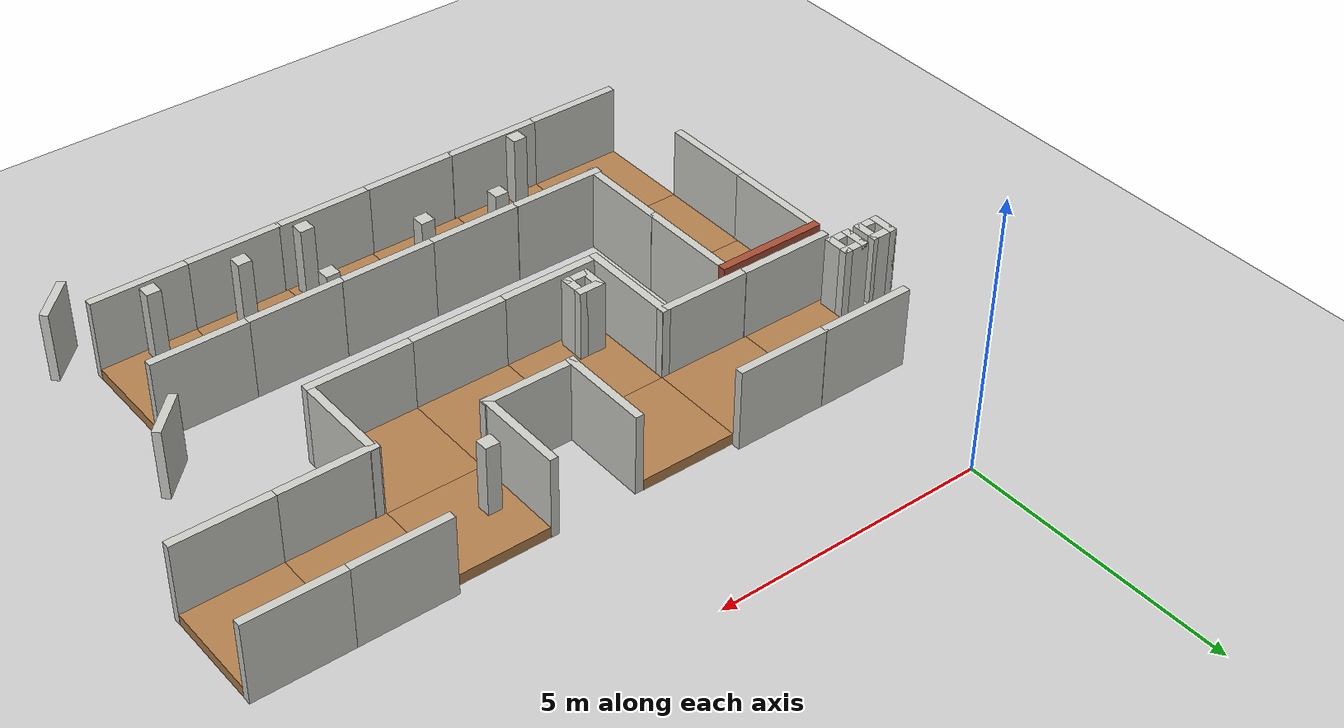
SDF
<sdf version="1.6">
 <world name="default">
  <model name="ground_plane">
   <static>1</static>
   <link name="link">
    <collision name="collision">
     <geometry><plane><normal>0 0 1</normal><size>100 100</size></plane></geometry>
     <surface><friction><ode><mu>100</mu><mu2>50</mu2></ode></friction></surface>
    </collision>
    <visual name="visual">
     <cast_shadows>0</cast_shadows>
     <geometry><plane><normal>0 0 1</normal><size>100 100</size></plane></geometry>
     <material>
      <script><uri>file://media/materials/scripts/gazebo.material</uri><name>Gazebo/Grey</name></script>
     </material>
    </visual>
   </link>
  </model>
  <model name="nerve_end_clone">
   <pose>0.033954 -5.68438 0 0 -0 2e-06</pose>
   <link name="Wall_0">
    <collision name="Wall_0_Collision">
     <geometry><box><size>1.76 1.75 0.2</size></box></geometry>
     <pose>0 0 0.1 0 -0 0</pose>
    </collision>
    <visual name="Wall_0_Visual">
     <pose>0 0 0.1 0 -0 0</pose>
     <geometry><box><size>1.76 1.75 0.2</size></box></geometry>
     <material>
      <script><uri>file://media/materials/scripts/gazebo.material</uri><name>Gazebo/Wood</name></script>
      <ambient>1 0.764706 0.305882 1</ambient>
     </material>
    </visual>
    <pose>-0.009 -0.064 0 0 -0 0</pose>
   </link>
   <link name="Wall_2">
    <collision name="Wall_2_Collision">
     <geometry><box><size>1.8 0.15 1.5</size></box></geometry>
     <pose>0 0 0.75 0 -0 0</pose>
    </collision>
    <visual name="Wall_2_Visual">
     <pose>0 0 0.75 0 -0 0</pose>
     <geometry><box><size>1.8 0.15 1.5</size></box></geometry>
     <material>
      <script><uri>file://media/materials/scripts/gazebo.material</uri><name>Gazebo/CeilingTiled</name></script>
      <ambient>1 0.764706 0.305882 1</ambient>
     </material>
    </visual>
    <pose>-0.95 -0.065 0 0 0 -1.5708</pose>
   </link>
   <link name="Wall_4">
    <collision name="Wall_4_Collision">
     <geometry><box><size>1.8 0.15 1.5</size></box></geometry>
     <pose>0 0 0.75 0 -0 0</pose>
    </collision>
    <visual name="Wall_4_Visual">
     <pose>0 0 0.75 0 -0 0</pose>
     <geometry><box><size>1.8 0.15 1.5</size></box></geometry>
     <material>
      <script><uri>file://media/materials/scripts/gazebo.material</uri><name>Gazebo/CeilingTiled</name></script>
      <ambient>1 0.764706 0.305882 1</ambient>
     </material>
    </visual>
    <pose>0.95 -0.065 0 0 0 -1.5708</pose>
   </link>
   <link name="Wall_6">
    <collision name="Wall_6_Collision">
     <geometry><box><size>2.05 0.15 1.5</size></box></geometry>
     <pose>0 0 0.75 0 -0 0</pose>
    </collision>
    <visual name="Wall_6_Visual">
     <pose>0 0 0.75 0 -0 0</pose>
     <geometry><box><size>2.05 0.15 1.5</size></box></geometry>
     <material>
      <script><uri>file://media/materials/scripts/gazebo.material</uri><name>Gazebo/Bricks</name></script>
      <ambient>0.996078 0.47451 0.0196078 1</ambient>
     </material>
    </visual>
    <pose>0 0.89 0 0 -0 0</pose>
   </link>
   <static>1</static>
  </model>
  <model name="nerve_straight_clone">
   <pose>-0.046085 -3.55478 0 0 0 -1.5708</pose>
   <link name="Wall_0">
    <collision name="Wall_0_Collision">
     <geometry><box><size>1.76 1.75 0.2</size></box></geometry>
     <pose>0 0 0.1 0 -0 0</pose>
    </collision>
    <visual name="Wall_0_Visual">
     <pose>0 0 0.1 0 -0 0</pose>
     <geometry><box><size>1.76 1.75 0.2</size></box></geometry>
     <material>
      <script><uri>file://media/materials/scripts/gazebo.material</uri><name>Gazebo/Wood</name></script>
      <ambient>1 0.764706 0.305882 1</ambient>
     </material>
    </visual>
    <pose>0.005 -0.002 0 0 -0 3.14159</pose>
   </link>
   <link name="Wall_2">
    <collision name="Wall_2_Collision">
     <geometry><box><size>1.75 0.15 1.5</size></box></geometry>
     <pose>0 0 0.75 0 -0 0</pose>
    </collision>
    <visual name="Wall_2_Visual">
     <pose>0 0 0.75 0 -0 0</pose>
     <geometry><box><size>1.75 0.15 1.5</size></box></geometry>
     <material>
      <script><uri>file://media/materials/scripts/gazebo.material</uri><name>Gazebo/CeilingTiled</name></script>
      <ambient>1 0.764706 0.305882 1</ambient>
     </material>
    </visual>
    <pose>-0.955 0.002 0 0 0 -1.5708</pose>
   </link>
   <link name="Wall_4">
    <collision name="Wall_4_Collision">
     <geometry><box><size>1.75 0.15 1.5</size></box></geometry>
     <pose>0 0 0.75 0 -0 0</pose>
    </collision>
    <visual name="Wall_4_Visual">
     <pose>0 0 0.75 0 -0 0</pose>
     <geometry><box><size>1.75 0.15 1.5</size></box></geometry>
     <material>
      <script><uri>file://media/materials/scripts/gazebo.material</uri><name>Gazebo/CeilingTiled</name></script>
      <ambient>1 0.764706 0.305882 1</ambient>
     </material>
    </visual>
    <pose>0.955 0.002 0 0 0 -1.5708</pose>
   </link>
   <static>1</static>
  </model>
  <model name="nerve_onewall_clone">
   <pose>0.01829 -9.25795 0 0 -0 1.5708</pose>
   <link name="Wall_0">
    <collision name="Wall_0_Collision">
     <geometry><box><size>1.76 1.75 0.2</size></box></geometry>
     <pose>0 0 0.1 0 -0 0</pose>
    </collision>
    <visual name="Wall_0_Visual">
     <pose>0 0 0.1 0 -0 0</pose>
     <geometry><box><size>1.76 1.75 0.2</size></box></geometry>
     <material>
      <script><uri>file://media/materials/scripts/gazebo.material</uri><name>Gazebo/Wood</name></script>
      <ambient>1 0.764706 0.305882 1</ambient>
     </material>
    </visual>
    <pose>0.0775 -0.002 0 0 -0 3.14159</pose>
   </link>
   <link name="Wall_2">
    <collision name="Wall_2_Collision">
     <geometry><box><size>1.75 0.15 1.5</size></box></geometry>
     <pose>0 0 0.75 0 -0 0</pose>
    </collision>
    <visual name="Wall_2_Visual">
     <pose>0 0 0.75 0 -0 0</pose>
     <geometry><box><size>1.75 0.15 1.5</size></box></geometry>
     <material>
      <script><uri>file://media/materials/scripts/gazebo.material</uri><name>Gazebo/CeilingTiled</name></script>
      <ambient>1 0.764706 0.305882 1</ambient>
     </material>
    </visual>
    <pose>-0.8825 0.002 0 0 0 -1.5708</pose>
   </link>
   <static>1</static>
  </model>
  <model name="nerve_straight_clone_0_clone_1">
   <pose>8.6208 -9.18716 0 0 0 -1.5708</pose>
   <link name="Wall_0">
    <collision name="Wall_0_Collision">
     <geometry><box><size>1.76 1.75 0.2</size></box></geometry>
     <pose>0 0 0.1 0 -0 0</pose>
    </collision>
    <visual name="Wall_0_Visual">
     <pose>0 0 0.1 0 -0 0</pose>
     <geometry><box><size>1.76 1.75 0.2</size></box></geometry>
     <material>
      <script><uri>file://media/materials/scripts/gazebo.material</uri><name>Gazebo/Wood</name></script>
      <ambient>1 0.764706 0.305882 1</ambient>
     </material>
    </visual>
    <pose>0.005 -0.002 0 0 -0 3.14159</pose>
   </link>
   <link name="Wall_2">
    <collision name="Wall_2_Collision">
     <geometry><box><size>1.75 0.15 1.5</size></box></geometry>
     <pose>0 0 0.75 0 -0 0</pose>
    </collision>
    <visual name="Wall_2_Visual">
     <pose>0 0 0.75 0 -0 0</pose>
     <geometry><box><size>1.75 0.15 1.5</size></box></geometry>
     <material>
      <script><uri>file://media/materials/scripts/gazebo.material</uri><name>Gazebo/CeilingTiled</name></script>
      <ambient>1 0.764706 0.305882 1</ambient>
     </material>
    </visual>
    <pose>-0.955 0.002 0 0 0 -1.5708</pose>
   </link>
   <link name="Wall_4">
    <collision name="Wall_4_Collision">
     <geometry><box><size>1.75 0.15 1.5</size></box></geometry>
     <pose>0 0 0.75 0 -0 0</pose>
    </collision>
    <visual name="Wall_4_Visual">
     <pose>0 0 0.75 0 -0 0</pose>
     <geometry><box><size>1.75 0.15 1.5</size></box></geometry>
     <material>
      <script><uri>file://media/materials/scripts/gazebo.material</uri><name>Gazebo/CeilingTiled</name></script>
      <ambient>1 0.764706 0.305882 1</ambient>
     </material>
    </visual>
    <pose>0.955 0.002 0 0 0 -1.5708</pose>
   </link>
   <static>1</static>
  </model>
  <model name="nerve_straight_clone_0_clone_0_clone_1">
   <pose>8.6286 -3.57606 0 0 0 -1.5708</pose>
   <link name="Wall_0">
    <collision name="Wall_0_Collision">
     <geometry><box><size>1.76 1.75 0.2</size></box></geometry>
     <pose>0 0 0.1 0 -0 0</pose>
    </collision>
    <visual name="Wall_0_Visual">
     <pose>0 0 0.1 0 -0 0</pose>
     <geometry><box><size>1.76 1.75 0.2</size></box></geometry>
     <material>
      <script><uri>file://media/materials/scripts/gazebo.material</uri><name>Gazebo/Wood</name></script>
      <ambient>1 0.764706 0.305882 1</ambient>
     </material>
    </visual>
    <pose>0.005 -0.002 0 0 -0 3.14159</pose>
   </link>
   <link name="Wall_2">
    <collision name="Wall_2_Collision">
     <geometry><box><size>1.75 0.15 1.5</size></box></geometry>
     <pose>0 0 0.75 0 -0 0</pose>
    </collision>
    <visual name="Wall_2_Visual">
     <pose>0 0 0.75 0 -0 0</pose>
     <geometry><box><size>1.75 0.15 1.5</size></box></geometry>
     <material>
      <script><uri>file://media/materials/scripts/gazebo.material</uri><name>Gazebo/CeilingTiled</name></script>
      <ambient>1 0.764706 0.305882 1</ambient>
     </material>
    </visual>
    <pose>-0.955 0.002 0 0 0 -1.5708</pose>
   </link>
   <link name="Wall_4">
    <collision name="Wall_4_Collision">
     <geometry><box><size>1.75 0.15 1.5</size></box></geometry>
     <pose>0 0 0.75 0 -0 0</pose>
    </collision>
    <visual name="Wall_4_Visual">
     <pose>0 0 0.75 0 -0 0</pose>
     <geometry><box><size>1.75 0.15 1.5</size></box></geometry>
     <material>
      <script><uri>file://media/materials/scripts/gazebo.material</uri><name>Gazebo/CeilingTiled</name></script>
      <ambient>1 0.764706 0.305882 1</ambient>
     </material>
    </visual>
    <pose>0.955 0.002 0 0 0 -1.5708</pose>
   </link>
   <static>1</static>
  </model>
  <model name="nerve_straight_clone_clone">
   <pose>1.65819 -3.56106 0 0 0 -1.5708</pose>
   <link name="Wall_0">
    <collision name="Wall_0_Collision">
     <geometry><box><size>1.76 1.75 0.2</size></box></geometry>
     <pose>0 0 0.1 0 -0 0</pose>
    </collision>
    <visual name="Wall_0_Visual">
     <pose>0 0 0.1 0 -0 0</pose>
     <geometry><box><size>1.76 1.75 0.2</size></box></geometry>
     <material>
      <script><uri>file://media/materials/scripts/gazebo.material</uri><name>Gazebo/Wood</name></script>
      <ambient>1 0.764706 0.305882 1</ambient>
     </material>
    </visual>
    <pose>0.005 -0.002 0 0 -0 3.14159</pose>
   </link>
   <link name="Wall_2">
    <collision name="Wall_2_Collision">
     <geometry><box><size>1.75 0.15 1.5</size></box></geometry>
     <pose>0 0 0.75 0 -0 0</pose>
    </collision>
    <visual name="Wall_2_Visual">
     <pose>0 0 0.75 0 -0 0</pose>
     <geometry><box><size>1.75 0.15 1.5</size></box></geometry>
     <material>
      <script><uri>file://media/materials/scripts/gazebo.material</uri><name>Gazebo/CeilingTiled</name></script>
      <ambient>1 0.764706 0.305882 1</ambient>
     </material>
    </visual>
    <pose>-0.955 0.002 0 0 0 -1.5708</pose>
   </link>
   <link name="Wall_4">
    <collision name="Wall_4_Collision">
     <geometry><box><size>1.75 0.15 1.5</size></box></geometry>
     <pose>0 0 0.75 0 -0 0</pose>
    </collision>
    <visual name="Wall_4_Visual">
     <pose>0 0 0.75 0 -0 0</pose>
     <geometry><box><size>1.75 0.15 1.5</size></box></geometry>
     <material>
      <script><uri>file://media/materials/scripts/gazebo.material</uri><name>Gazebo/CeilingTiled</name></script>
      <ambient>1 0.764706 0.305882 1</ambient>
     </material>
    </visual>
    <pose>0.955 0.002 0 0 0 -1.5708</pose>
   </link>
   <static>1</static>
  </model>
  <model name="nerve_onewall_clone_clone">
   <pose>3.48323 -3.56667 0 0 0 -3.14159</pose>
   <link name="Wall_0">
    <collision name="Wall_0_Collision">
     <geometry><box><size>1.76 1.75 0.2</size></box></geometry>
     <pose>0 0 0.1 0 -0 0</pose>
    </collision>
    <visual name="Wall_0_Visual">
     <pose>0 0 0.1 0 -0 0</pose>
     <geometry><box><size>1.76 1.75 0.2</size></box></geometry>
     <material>
      <script><uri>file://media/materials/scripts/gazebo.material</uri><name>Gazebo/Wood</name></script>
      <ambient>1 0.764706 0.305882 1</ambient>
     </material>
    </visual>
    <pose>0.0775 -0.002 0 0 -0 3.14159</pose>
   </link>
   <link name="Wall_2">
    <collision name="Wall_2_Collision">
     <geometry><box><size>1.75 0.15 1.5</size></box></geometry>
     <pose>0 0 0.75 0 -0 0</pose>
    </collision>
    <visual name="Wall_2_Visual">
     <pose>0 0 0.75 0 -0 0</pose>
     <geometry><box><size>1.75 0.15 1.5</size></box></geometry>
     <material>
      <script><uri>file://media/materials/scripts/gazebo.material</uri><name>Gazebo/CeilingTiled</name></script>
      <ambient>1 0.764706 0.305882 1</ambient>
     </material>
    </visual>
    <pose>-0.8825 0.002 0 0 0 -1.5708</pose>
   </link>
   <static>1</static>
  </model>
  <model name="nerve_corner_clone_clone_clone_clone_clone_1">
   <pose>3.33213 -5.39258 0 0 -0 1.5708</pose>
   <link name="Wall_0">
    <collision name="Wall_0_Collision">
     <geometry><box><size>1.76 1.75 0.2</size></box></geometry>
     <pose>0 0 0.1 0 -0 0</pose>
    </collision>
    <visual name="Wall_0_Visual">
     <pose>0 0 0.1 0 -0 0</pose>
     <geometry><box><size>1.76 1.75 0.2</size></box></geometry>
     <material>
      <script><uri>file://media/materials/scripts/gazebo.material</uri><name>Gazebo/Wood</name></script>
      <ambient>1 0.764706 0.305882 1</ambient>
     </material>
    </visual>
    <pose>0.077507 -0.077007 0 0 -0 3.14159</pose>
   </link>
   <link name="Wall_2">
    <collision name="Wall_2_Collision">
     <geometry><box><size>1.75 0.15 1.5</size></box></geometry>
     <pose>0 0 0.75 0 -0 0</pose>
    </collision>
    <visual name="Wall_2_Visual">
     <pose>0 0 0.75 0 -0 0</pose>
     <geometry><box><size>1.75 0.15 1.5</size></box></geometry>
     <material>
      <script><uri>file://media/materials/scripts/gazebo.material</uri><name>Gazebo/CeilingTiled</name></script>
      <ambient>1 0.764706 0.305882 1</ambient>
     </material>
    </visual>
    <pose>-0.882493 -0.073007 0 0 0 -1.5708</pose>
   </link>
   <link name="Wall_4">
    <collision name="Wall_4_Collision">
     <geometry><box><size>1.91042 0.15 1.5</size></box></geometry>
     <pose>0 0 0.75 0 -0 0</pose>
    </collision>
    <visual name="Wall_4_Visual">
     <pose>0 0 0.75 0 -0 0</pose>
     <geometry><box><size>1.91042 0.15 1.5</size></box></geometry>
     <material>
      <script><uri>file://media/materials/scripts/gazebo.material</uri><name>Gazebo/CeilingTiled</name></script>
      <ambient>1 0.764706 0.305882 1</ambient>
     </material>
    </visual>
    <pose>-0.002284 0.876825 0 0 -0 3.1414</pose>
   </link>
   <static>1</static>
  </model>
  <model name="nerve_corner_clone_clone_clone_clone_clone_2">
   <pose>6.97959 -5.38885 0 0 0 -3.14159</pose>
   <link name="Wall_0">
    <collision name="Wall_0_Collision">
     <geometry><box><size>1.76 1.75 0.2</size></box></geometry>
     <pose>0 0 0.1 0 -0 0</pose>
    </collision>
    <visual name="Wall_0_Visual">
     <pose>0 0 0.1 0 -0 0</pose>
     <geometry><box><size>1.76 1.75 0.2</size></box></geometry>
     <material>
      <script><uri>file://media/materials/scripts/gazebo.material</uri><name>Gazebo/Wood</name></script>
      <ambient>1 0.764706 0.305882 1</ambient>
     </material>
    </visual>
    <pose>0.077507 -0.077007 0 0 -0 3.14159</pose>
   </link>
   <link name="Wall_2">
    <collision name="Wall_2_Collision">
     <geometry><box><size>1.75 0.15 1.5</size></box></geometry>
     <pose>0 0 0.75 0 -0 0</pose>
    </collision>
    <visual name="Wall_2_Visual">
     <pose>0 0 0.75 0 -0 0</pose>
     <geometry><box><size>1.75 0.15 1.5</size></box></geometry>
     <material>
      <script><uri>file://media/materials/scripts/gazebo.material</uri><name>Gazebo/CeilingTiled</name></script>
      <ambient>1 0.764706 0.305882 1</ambient>
     </material>
    </visual>
    <pose>-0.882493 -0.073007 0 0 0 -1.5708</pose>
   </link>
   <link name="Wall_4">
    <collision name="Wall_4_Collision">
     <geometry><box><size>1.91042 0.15 1.5</size></box></geometry>
     <pose>0 0 0.75 0 -0 0</pose>
    </collision>
    <visual name="Wall_4_Visual">
     <pose>0 0 0.75 0 -0 0</pose>
     <geometry><box><size>1.91042 0.15 1.5</size></box></geometry>
     <material>
      <script><uri>file://media/materials/scripts/gazebo.material</uri><name>Gazebo/CeilingTiled</name></script>
      <ambient>1 0.764706 0.305882 1</ambient>
     </material>
    </visual>
    <pose>-0.002284 0.876825 0 0 -0 3.1414</pose>
   </link>
   <static>1</static>
  </model>
  <model name="nerve_onewall_clone_clone_clone">
   <pose>6.8175 -3.57567 0 0 -0 3e-06</pose>
   <link name="Wall_0">
    <collision name="Wall_0_Collision">
     <geometry><box><size>1.76 1.75 0.2</size></box></geometry>
     <pose>0 0 0.1 0 -0 0</pose>
    </collision>
    <visual name="Wall_0_Visual">
     <pose>0 0 0.1 0 -0 0</pose>
     <geometry><box><size>1.76 1.75 0.2</size></box></geometry>
     <material>
      <script><uri>file://media/materials/scripts/gazebo.material</uri><name>Gazebo/Wood</name></script>
      <ambient>1 0.764706 0.305882 1</ambient>
     </material>
    </visual>
    <pose>0.0775 -0.002 0 0 -0 3.14159</pose>
   </link>
   <link name="Wall_2">
    <collision name="Wall_2_Collision">
     <geometry><box><size>1.75 0.15 1.5</size></box></geometry>
     <pose>0 0 0.75 0 -0 0</pose>
    </collision>
    <visual name="Wall_2_Visual">
     <pose>0 0 0.75 0 -0 0</pose>
     <geometry><box><size>1.75 0.15 1.5</size></box></geometry>
     <material>
      <script><uri>file://media/materials/scripts/gazebo.material</uri><name>Gazebo/CeilingTiled</name></script>
      <ambient>1 0.764706 0.305882 1</ambient>
     </material>
    </visual>
    <pose>-0.8825 0.002 0 0 0 -1.5708</pose>
   </link>
   <static>1</static>
  </model>
  <model name="nerve_straight_clone_0_clone_0_clone_1_clone">
   <pose>5.15395 -5.3136 0 0 0 -1.5708</pose>
   <link name="Wall_0">
    <collision name="Wall_0_Collision">
     <geometry><box><size>1.76 1.75 0.2</size></box></geometry>
     <pose>0 0 0.1 0 -0 0</pose>
    </collision>
    <visual name="Wall_0_Visual">
     <pose>0 0 0.1 0 -0 0</pose>
     <geometry><box><size>1.76 1.75 0.2</size></box></geometry>
     <material>
      <script><uri>file://media/materials/scripts/gazebo.material</uri><name>Gazebo/Wood</name></script>
      <ambient>1 0.764706 0.305882 1</ambient>
     </material>
    </visual>
    <pose>0.005 -0.002 0 0 -0 3.14159</pose>
   </link>
   <link name="Wall_2">
    <collision name="Wall_2_Collision">
     <geometry><box><size>1.75 0.15 1.5</size></box></geometry>
     <pose>0 0 0.75 0 -0 0</pose>
    </collision>
    <visual name="Wall_2_Visual">
     <pose>0 0 0.75 0 -0 0</pose>
     <geometry><box><size>1.75 0.15 1.5</size></box></geometry>
     <material>
      <script><uri>file://media/materials/scripts/gazebo.material</uri><name>Gazebo/CeilingTiled</name></script>
      <ambient>1 0.764706 0.305882 1</ambient>
     </material>
    </visual>
    <pose>-0.955 0.002 0 0 0 -1.5708</pose>
   </link>
   <link name="Wall_4">
    <collision name="Wall_4_Collision">
     <geometry><box><size>1.75 0.15 1.5</size></box></geometry>
     <pose>0 0 0.75 0 -0 0</pose>
    </collision>
    <visual name="Wall_4_Visual">
     <pose>0 0 0.75 0 -0 0</pose>
     <geometry><box><size>1.75 0.15 1.5</size></box></geometry>
     <material>
      <script><uri>file://media/materials/scripts/gazebo.material</uri><name>Gazebo/CeilingTiled</name></script>
      <ambient>1 0.764706 0.305882 1</ambient>
     </material>
    </visual>
    <pose>0.955 0.002 0 0 0 -1.5708</pose>
   </link>
   <static>1</static>
  </model>
  <model name="nerve_straight_clone_0_clone_1_clone_0_clone_0">
   <pose>10.3746 -3.57558 0 0 0 -1.5708</pose>
   <link name="Wall_0">
    <collision name="Wall_0_Collision">
     <geometry><box><size>1.76 1.75 0.2</size></box></geometry>
     <pose>0 0 0.1 0 -0 0</pose>
    </collision>
    <visual name="Wall_0_Visual">
     <pose>0 0 0.1 0 -0 0</pose>
     <geometry><box><size>1.76 1.75 0.2</size></box></geometry>
     <material>
      <script><uri>file://media/materials/scripts/gazebo.material</uri><name>Gazebo/Wood</name></script>
      <ambient>1 0.764706 0.305882 1</ambient>
     </material>
    </visual>
    <pose>0.005 -0.002 0 0 -0 3.14159</pose>
   </link>
   <link name="Wall_2">
    <collision name="Wall_2_Collision">
     <geometry><box><size>1.75 0.15 1.5</size></box></geometry>
     <pose>0 0 0.75 0 -0 0</pose>
    </collision>
    <visual name="Wall_2_Visual">
     <pose>0 0 0.75 0 -0 0</pose>
     <geometry><box><size>1.75 0.15 1.5</size></box></geometry>
     <material>
      <script><uri>file://media/materials/scripts/gazebo.material</uri><name>Gazebo/CeilingTiled</name></script>
      <ambient>1 0.764706 0.305882 1</ambient>
     </material>
    </visual>
    <pose>-0.955 0.002 0 0 0 -1.5708</pose>
   </link>
   <link name="Wall_4">
    <collision name="Wall_4_Collision">
     <geometry><box><size>1.75 0.15 1.5</size></box></geometry>
     <pose>0 0 0.75 0 -0 0</pose>
    </collision>
    <visual name="Wall_4_Visual">
     <pose>0 0 0.75 0 -0 0</pose>
     <geometry><box><size>1.75 0.15 1.5</size></box></geometry>
     <material>
      <script><uri>file://media/materials/scripts/gazebo.material</uri><name>Gazebo/CeilingTiled</name></script>
      <ambient>1 0.764706 0.305882 1</ambient>
     </material>
    </visual>
    <pose>0.955 0.002 0 0 0 -1.5708</pose>
   </link>
   <static>1</static>
  </model>
  <model name="nerve_straight_clone_0_clone_1_clone_0_clone_1">
   <pose>6.88265 -9.18852 0 0 0 -1.5708</pose>
   <link name="Wall_0">
    <collision name="Wall_0_Collision">
     <geometry><box><size>1.76 1.75 0.2</size></box></geometry>
     <pose>0 0 0.1 0 -0 0</pose>
    </collision>
    <visual name="Wall_0_Visual">
     <pose>0 0 0.1 0 -0 0</pose>
     <geometry><box><size>1.76 1.75 0.2</size></box></geometry>
     <material>
      <script><uri>file://media/materials/scripts/gazebo.material</uri><name>Gazebo/Wood</name></script>
      <ambient>1 0.764706 0.305882 1</ambient>
     </material>
    </visual>
    <pose>0.005 -0.002 0 0 -0 3.14159</pose>
   </link>
   <link name="Wall_2">
    <collision name="Wall_2_Collision">
     <geometry><box><size>1.75 0.15 1.5</size></box></geometry>
     <pose>0 0 0.75 0 -0 0</pose>
    </collision>
    <visual name="Wall_2_Visual">
     <pose>0 0 0.75 0 -0 0</pose>
     <geometry><box><size>1.75 0.15 1.5</size></box></geometry>
     <material>
      <script><uri>file://media/materials/scripts/gazebo.material</uri><name>Gazebo/CeilingTiled</name></script>
      <ambient>1 0.764706 0.305882 1</ambient>
     </material>
    </visual>
    <pose>-0.955 0.002 0 0 0 -1.5708</pose>
   </link>
   <link name="Wall_4">
    <collision name="Wall_4_Collision">
     <geometry><box><size>1.75 0.15 1.5</size></box></geometry>
     <pose>0 0 0.75 0 -0 0</pose>
    </collision>
    <visual name="Wall_4_Visual">
     <pose>0 0 0.75 0 -0 0</pose>
     <geometry><box><size>1.75 0.15 1.5</size></box></geometry>
     <material>
      <script><uri>file://media/materials/scripts/gazebo.material</uri><name>Gazebo/CeilingTiled</name></script>
      <ambient>1 0.764706 0.305882 1</ambient>
     </material>
    </visual>
    <pose>0.955 0.002 0 0 0 -1.5708</pose>
   </link>
   <static>1</static>
  </model>
  <model name="nerve_straight_clone_0_clone_1_clone_0_clone_2">
   <pose>5.17661 -9.18701 0 0 0 -1.5708</pose>
   <link name="Wall_0">
    <collision name="Wall_0_Collision">
     <geometry><box><size>1.76 1.75 0.2</size></box></geometry>
     <pose>0 0 0.1 0 -0 0</pose>
    </collision>
    <visual name="Wall_0_Visual">
     <pose>0 0 0.1 0 -0 0</pose>
     <geometry><box><size>1.76 1.75 0.2</size></box></geometry>
     <material>
      <script><uri>file://media/materials/scripts/gazebo.material</uri><name>Gazebo/Wood</name></script>
      <ambient>1 0.764706 0.305882 1</ambient>
     </material>
    </visual>
    <pose>0.005 -0.002 0 0 -0 3.14159</pose>
   </link>
   <link name="Wall_2">
    <collision name="Wall_2_Collision">
     <geometry><box><size>1.75 0.15 1.5</size></box></geometry>
     <pose>0 0 0.75 0 -0 0</pose>
    </collision>
    <visual name="Wall_2_Visual">
     <pose>0 0 0.75 0 -0 0</pose>
     <geometry><box><size>1.75 0.15 1.5</size></box></geometry>
     <material>
      <script><uri>file://media/materials/scripts/gazebo.material</uri><name>Gazebo/CeilingTiled</name></script>
      <ambient>1 0.764706 0.305882 1</ambient>
     </material>
    </visual>
    <pose>-0.955 0.002 0 0 0 -1.5708</pose>
   </link>
   <link name="Wall_4">
    <collision name="Wall_4_Collision">
     <geometry><box><size>1.75 0.15 1.5</size></box></geometry>
     <pose>0 0 0.75 0 -0 0</pose>
    </collision>
    <visual name="Wall_4_Visual">
     <pose>0 0 0.75 0 -0 0</pose>
     <geometry><box><size>1.75 0.15 1.5</size></box></geometry>
     <material>
      <script><uri>file://media/materials/scripts/gazebo.material</uri><name>Gazebo/CeilingTiled</name></script>
      <ambient>1 0.764706 0.305882 1</ambient>
     </material>
    </visual>
    <pose>0.955 0.002 0 0 0 -1.5708</pose>
   </link>
   <static>1</static>
  </model>
  <model name="nerve_straight_clone_0_clone_1_clone_0_clone_3">
   <pose>3.45605 -9.18839 0 0 0 -1.5708</pose>
   <link name="Wall_0">
    <collision name="Wall_0_Collision">
     <geometry><box><size>1.76 1.75 0.2</size></box></geometry>
     <pose>0 0 0.1 0 -0 0</pose>
    </collision>
    <visual name="Wall_0_Visual">
     <pose>0 0 0.1 0 -0 0</pose>
     <geometry><box><size>1.76 1.75 0.2</size></box></geometry>
     <material>
      <script><uri>file://media/materials/scripts/gazebo.material</uri><name>Gazebo/Wood</name></script>
      <ambient>1 0.764706 0.305882 1</ambient>
     </material>
    </visual>
    <pose>0.005 -0.002 0 0 -0 3.14159</pose>
   </link>
   <link name="Wall_2">
    <collision name="Wall_2_Collision">
     <geometry><box><size>1.75 0.15 1.5</size></box></geometry>
     <pose>0 0 0.75 0 -0 0</pose>
    </collision>
    <visual name="Wall_2_Visual">
     <pose>0 0 0.75 0 -0 0</pose>
     <geometry><box><size>1.75 0.15 1.5</size></box></geometry>
     <material>
      <script><uri>file://media/materials/scripts/gazebo.material</uri><name>Gazebo/CeilingTiled</name></script>
      <ambient>1 0.764706 0.305882 1</ambient>
     </material>
    </visual>
    <pose>-0.955 0.002 0 0 0 -1.5708</pose>
   </link>
   <link name="Wall_4">
    <collision name="Wall_4_Collision">
     <geometry><box><size>1.75 0.15 1.5</size></box></geometry>
     <pose>0 0 0.75 0 -0 0</pose>
    </collision>
    <visual name="Wall_4_Visual">
     <pose>0 0 0.75 0 -0 0</pose>
     <geometry><box><size>1.75 0.15 1.5</size></box></geometry>
     <material>
      <script><uri>file://media/materials/scripts/gazebo.material</uri><name>Gazebo/CeilingTiled</name></script>
      <ambient>1 0.764706 0.305882 1</ambient>
     </material>
    </visual>
    <pose>0.955 0.002 0 0 0 -1.5708</pose>
   </link>
   <static>1</static>
  </model>
  <model name="nerve_straight_clone_0_clone_1_clone_0_clone_4">
   <pose>1.75603 -9.18083 0 0 0 -1.5708</pose>
   <link name="Wall_0">
    <collision name="Wall_0_Collision">
     <geometry><box><size>1.76 1.75 0.2</size></box></geometry>
     <pose>0 0 0.1 0 -0 0</pose>
    </collision>
    <visual name="Wall_0_Visual">
     <pose>0 0 0.1 0 -0 0</pose>
     <geometry><box><size>1.76 1.75 0.2</size></box></geometry>
     <material>
      <script><uri>file://media/materials/scripts/gazebo.material</uri><name>Gazebo/Wood</name></script>
      <ambient>1 0.764706 0.305882 1</ambient>
     </material>
    </visual>
    <pose>0.005 -0.002 0 0 -0 3.14159</pose>
   </link>
   <link name="Wall_2">
    <collision name="Wall_2_Collision">
     <geometry><box><size>1.75 0.15 1.5</size></box></geometry>
     <pose>0 0 0.75 0 -0 0</pose>
    </collision>
    <visual name="Wall_2_Visual">
     <pose>0 0 0.75 0 -0 0</pose>
     <geometry><box><size>1.75 0.15 1.5</size></box></geometry>
     <material>
      <script><uri>file://media/materials/scripts/gazebo.material</uri><name>Gazebo/CeilingTiled</name></script>
      <ambient>1 0.764706 0.305882 1</ambient>
     </material>
    </visual>
    <pose>-0.955 0.002 0 0 0 -1.5708</pose>
   </link>
   <link name="Wall_4">
    <collision name="Wall_4_Collision">
     <geometry><box><size>1.75 0.15 1.5</size></box></geometry>
     <pose>0 0 0.75 0 -0 0</pose>
    </collision>
    <visual name="Wall_4_Visual">
     <pose>0 0 0.75 0 -0 0</pose>
     <geometry><box><size>1.75 0.15 1.5</size></box></geometry>
     <material>
      <script><uri>file://media/materials/scripts/gazebo.material</uri><name>Gazebo/CeilingTiled</name></script>
      <ambient>1 0.764706 0.305882 1</ambient>
     </material>
    </visual>
    <pose>0.955 0.002 0 0 0 -1.5708</pose>
   </link>
   <static>1</static>
  </model>
  <model name="nerve_straight_clone_0_clone_clone_clone">
   <pose>0.033036 -7.44606 0 0 -0 3.14159</pose>
   <link name="Wall_0">
    <collision name="Wall_0_Collision">
     <geometry><box><size>1.76 1.75 0.2</size></box></geometry>
     <pose>0 0 0.1 0 -0 0</pose>
    </collision>
    <visual name="Wall_0_Visual">
     <pose>0 0 0.1 0 -0 0</pose>
     <geometry><box><size>1.76 1.75 0.2</size></box></geometry>
     <material>
      <script><uri>file://media/materials/scripts/gazebo.material</uri><name>Gazebo/Wood</name></script>
      <ambient>1 0.764706 0.305882 1</ambient>
     </material>
    </visual>
    <pose>0.005 -0.002 0 0 -0 3.14159</pose>
   </link>
   <link name="Wall_2">
    <collision name="Wall_2_Collision">
     <geometry><box><size>1.75 0.15 1.5</size></box></geometry>
     <pose>0 0 0.75 0 -0 0</pose>
    </collision>
    <visual name="Wall_2_Visual">
     <pose>0 0 0.75 0 -0 0</pose>
     <geometry><box><size>1.75 0.15 1.5</size></box></geometry>
     <material>
      <script><uri>file://media/materials/scripts/gazebo.material</uri><name>Gazebo/CeilingTiled</name></script>
      <ambient>1 0.764706 0.305882 1</ambient>
     </material>
    </visual>
    <pose>-0.955 0.002 0 0 0 -1.5708</pose>
   </link>
   <link name="Wall_4">
    <collision name="Wall_4_Collision">
     <geometry><box><size>1.75 0.15 1.5</size></box></geometry>
     <pose>0 0 0.75 0 -0 0</pose>
    </collision>
    <visual name="Wall_4_Visual">
     <pose>0 0 0.75 0 -0 0</pose>
     <geometry><box><size>1.75 0.15 1.5</size></box></geometry>
     <material>
      <script><uri>file://media/materials/scripts/gazebo.material</uri><name>Gazebo/CeilingTiled</name></script>
      <ambient>1 0.764706 0.305882 1</ambient>
     </material>
    </visual>
    <pose>0.955 0.002 0 0 0 -1.5708</pose>
   </link>
   <static>1</static>
  </model>
  <model name="nerve_obs_squarepillar_large_clone_39">
   <pose>3.02023 -5.84578 0.2 0 -0 0</pose>
   <link name="Wall_31">
    <collision name="Wall_31_Collision">
     <geometry><box><size>0.5 0.15 1.3</size></box></geometry>
     <pose>0 0 0.65 0 -0 0</pose>
    </collision>
    <visual name="Wall_31_Visual">
     <pose>0 0 0.65 0 -0 0</pose>
     <geometry><box><size>0.5 0.15 1.3</size></box></geometry>
     <material>
      <script><uri>file://media/materials/scripts/gazebo.material</uri><name>Gazebo/CeilingTiled</name></script>
      <ambient>1 0.764706 0.305882 1</ambient>
     </material>
    </visual>
    <pose>-0.175 0 0 0 0 -1.5708</pose>
   </link>
   <link name="Wall_32">
    <collision name="Wall_32_Collision">
     <geometry><box><size>0.5 0.15 1.3</size></box></geometry>
     <pose>0 0 0.65 0 -0 0</pose>
    </collision>
    <visual name="Wall_32_Visual">
     <pose>0 0 0.65 0 -0 0</pose>
     <geometry><box><size>0.5 0.15 1.3</size></box></geometry>
     <material>
      <script><uri>file://media/materials/scripts/gazebo.material</uri><name>Gazebo/CeilingTiled</name></script>
      <ambient>1 0.764706 0.305882 1</ambient>
     </material>
    </visual>
    <pose>0 -0.175 0 0 -0 0</pose>
   </link>
   <link name="Wall_33">
    <collision name="Wall_33_Collision">
     <geometry><box><size>0.5 0.15 1.3</size></box></geometry>
     <pose>0 0 0.65 0 -0 0</pose>
    </collision>
    <visual name="Wall_33_Visual">
     <pose>0 0 0.65 0 -0 0</pose>
     <geometry><box><size>0.5 0.15 1.3</size></box></geometry>
     <material>
      <script><uri>file://media/materials/scripts/gazebo.material</uri><name>Gazebo/CeilingTiled</name></script>
      <ambient>1 0.764706 0.305882 1</ambient>
     </material>
    </visual>
    <pose>0.175 0 0 0 -0 1.5708</pose>
   </link>
   <link name="Wall_34">
    <collision name="Wall_34_Collision">
     <geometry><box><size>0.5 0.15 1.3</size></box></geometry>
     <pose>0 0 0.65 0 -0 0</pose>
    </collision>
    <visual name="Wall_34_Visual">
     <pose>0 0 0.65 0 -0 0</pose>
     <geometry><box><size>0.5 0.15 1.3</size></box></geometry>
     <material>
      <script><uri>file://media/materials/scripts/gazebo.material</uri><name>Gazebo/CeilingTiled</name></script>
      <ambient>1 0.764706 0.305882 1</ambient>
     </material>
    </visual>
    <pose>0 0.175 0 0 -0 3.14159</pose>
   </link>
   <static>1</static>
  </model>
  <model name="nerve_obs_squarepillar_large_clone_44">
   <pose>-1.64467 -4.10998 0.2 0 -0 0</pose>
   <link name="Wall_31">
    <collision name="Wall_31_Collision">
     <geometry><box><size>0.5 0.15 1.3</size></box></geometry>
     <pose>0 0 0.65 0 -0 0</pose>
    </collision>
    <visual name="Wall_31_Visual">
     <pose>0 0 0.65 0 -0 0</pose>
     <geometry><box><size>0.5 0.15 1.3</size></box></geometry>
     <material>
      <script><uri>file://media/materials/scripts/gazebo.material</uri><name>Gazebo/CeilingTiled</name></script>
      <ambient>1 0.764706 0.305882 1</ambient>
     </material>
    </visual>
    <pose>-0.175 0 0 0 0 -1.5708</pose>
   </link>
   <link name="Wall_32">
    <collision name="Wall_32_Collision">
     <geometry><box><size>0.5 0.15 1.3</size></box></geometry>
     <pose>0 0 0.65 0 -0 0</pose>
    </collision>
    <visual name="Wall_32_Visual">
     <pose>0 0 0.65 0 -0 0</pose>
     <geometry><box><size>0.5 0.15 1.3</size></box></geometry>
     <material>
      <script><uri>file://media/materials/scripts/gazebo.material</uri><name>Gazebo/CeilingTiled</name></script>
      <ambient>1 0.764706 0.305882 1</ambient>
     </material>
    </visual>
    <pose>0 -0.175 0 0 -0 0</pose>
   </link>
   <link name="Wall_33">
    <collision name="Wall_33_Collision">
     <geometry><box><size>0.5 0.15 1.3</size></box></geometry>
     <pose>0 0 0.65 0 -0 0</pose>
    </collision>
    <visual name="Wall_33_Visual">
     <pose>0 0 0.65 0 -0 0</pose>
     <geometry><box><size>0.5 0.15 1.3</size></box></geometry>
     <material>
      <script><uri>file://media/materials/scripts/gazebo.material</uri><name>Gazebo/CeilingTiled</name></script>
      <ambient>1 0.764706 0.305882 1</ambient>
     </material>
    </visual>
    <pose>0.175 0 0 0 -0 1.5708</pose>
   </link>
   <link name="Wall_34">
    <collision name="Wall_34_Collision">
     <geometry><box><size>0.5 0.15 1.3</size></box></geometry>
     <pose>0 0 0.65 0 -0 0</pose>
    </collision>
    <visual name="Wall_34_Visual">
     <pose>0 0 0.65 0 -0 0</pose>
     <geometry><box><size>0.5 0.15 1.3</size></box></geometry>
     <material>
      <script><uri>file://media/materials/scripts/gazebo.material</uri><name>Gazebo/CeilingTiled</name></script>
      <ambient>1 0.764706 0.305882 1</ambient>
     </material>
    </visual>
    <pose>0 0.175 0 0 -0 3.14159</pose>
   </link>
   <static>1</static>
  </model>
  <model name="nerve_obs_squarepillar_large_clone_45">
   <pose>-1.02799 -4.11097 0.2 0 -0 0</pose>
   <link name="Wall_31">
    <collision name="Wall_31_Collision">
     <geometry><box><size>0.5 0.15 1.3</size></box></geometry>
     <pose>0 0 0.65 0 -0 0</pose>
    </collision>
    <visual name="Wall_31_Visual">
     <pose>0 0 0.65 0 -0 0</pose>
     <geometry><box><size>0.5 0.15 1.3</size></box></geometry>
     <material>
      <script><uri>file://media/materials/scripts/gazebo.material</uri><name>Gazebo/CeilingTiled</name></script>
      <ambient>1 0.764706 0.305882 1</ambient>
     </material>
    </visual>
    <pose>-0.175 0 0 0 0 -1.5708</pose>
   </link>
   <link name="Wall_32">
    <collision name="Wall_32_Collision">
     <geometry><box><size>0.5 0.15 1.3</size></box></geometry>
     <pose>0 0 0.65 0 -0 0</pose>
    </collision>
    <visual name="Wall_32_Visual">
     <pose>0 0 0.65 0 -0 0</pose>
     <geometry><box><size>0.5 0.15 1.3</size></box></geometry>
     <material>
      <script><uri>file://media/materials/scripts/gazebo.material</uri><name>Gazebo/CeilingTiled</name></script>
      <ambient>1 0.764706 0.305882 1</ambient>
     </material>
    </visual>
    <pose>0 -0.175 0 0 -0 0</pose>
   </link>
   <link name="Wall_33">
    <collision name="Wall_33_Collision">
     <geometry><box><size>0.5 0.15 1.3</size></box></geometry>
     <pose>0 0 0.65 0 -0 0</pose>
    </collision>
    <visual name="Wall_33_Visual">
     <pose>0 0 0.65 0 -0 0</pose>
     <geometry><box><size>0.5 0.15 1.3</size></box></geometry>
     <material>
      <script><uri>file://media/materials/scripts/gazebo.material</uri><name>Gazebo/CeilingTiled</name></script>
      <ambient>1 0.764706 0.305882 1</ambient>
     </material>
    </visual>
    <pose>0.175 0 0 0 -0 1.5708</pose>
   </link>
   <link name="Wall_34">
    <collision name="Wall_34_Collision">
     <geometry><box><size>0.5 0.15 1.3</size></box></geometry>
     <pose>0 0 0.65 0 -0 0</pose>
    </collision>
    <visual name="Wall_34_Visual">
     <pose>0 0 0.65 0 -0 0</pose>
     <geometry><box><size>0.5 0.15 1.3</size></box></geometry>
     <material>
      <script><uri>file://media/materials/scripts/gazebo.material</uri><name>Gazebo/CeilingTiled</name></script>
      <ambient>1 0.764706 0.305882 1</ambient>
     </material>
    </visual>
    <pose>0 0.175 0 0 -0 3.14159</pose>
   </link>
   <static>1</static>
  </model>
  <model name="nerve_obs_squarepillar_small_clone_5">
   <pose>1.40418 -9.89973 0.2 0 -0 0</pose>
   <link name="Wall_40">
    <collision name="Wall_40_Collision">
     <geometry><box><size>0.26 0.25 1.3</size></box></geometry>
     <pose>0 0 0.65 0 -0 0</pose>
    </collision>
    <visual name="Wall_40_Visual">
     <pose>0 0 0.65 0 -0 0</pose>
     <geometry><box><size>0.26 0.25 1.3</size></box></geometry>
     <material>
      <script><uri>file://media/materials/scripts/gazebo.material</uri><name>Gazebo/CeilingTiled</name></script>
      <ambient>1 0.764706 0.305882 1</ambient>
     </material>
    </visual>
   </link>
   <static>1</static>
  </model>
  <model name="nerve_obs_squarepillar_small_clone_6">
   <pose>2.62637 -8.72779 0.2 0 -0 0</pose>
   <link name="Wall_40">
    <collision name="Wall_40_Collision">
     <geometry><box><size>0.26 0.25 1.3</size></box></geometry>
     <pose>0 0 0.65 0 -0 0</pose>
    </collision>
    <visual name="Wall_40_Visual">
     <pose>0 0 0.65 0 -0 0</pose>
     <geometry><box><size>0.26 0.25 1.3</size></box></geometry>
     <material>
      <script><uri>file://media/materials/scripts/gazebo.material</uri><name>Gazebo/CeilingTiled</name></script>
      <ambient>1 0.764706 0.305882 1</ambient>
     </material>
    </visual>
   </link>
   <static>1</static>
  </model>
  <model name="nerve_obs_squarepillar_small_clone_7">
   <pose>4.04489 -8.82976 0.2 0 -0 0</pose>
   <link name="Wall_40">
    <collision name="Wall_40_Collision">
     <geometry><box><size>0.26 0.25 1.3</size></box></geometry>
     <pose>0 0 0.65 0 -0 0</pose>
    </collision>
    <visual name="Wall_40_Visual">
     <pose>0 0 0.65 0 -0 0</pose>
     <geometry><box><size>0.26 0.25 1.3</size></box></geometry>
     <material>
      <script><uri>file://media/materials/scripts/gazebo.material</uri><name>Gazebo/CeilingTiled</name></script>
      <ambient>1 0.764706 0.305882 1</ambient>
     </material>
    </visual>
   </link>
   <static>1</static>
  </model>
  <model name="nerve_obs_squarepillar_small_clone_8">
   <pose>5.73175 -9.84689 0.2 0 -0 0</pose>
   <link name="Wall_40">
    <collision name="Wall_40_Collision">
     <geometry><box><size>0.26 0.25 1.3</size></box></geometry>
     <pose>0 0 0.65 0 -0 0</pose>
    </collision>
    <visual name="Wall_40_Visual">
     <pose>0 0 0.65 0 -0 0</pose>
     <geometry><box><size>0.26 0.25 1.3</size></box></geometry>
     <material>
      <script><uri>file://media/materials/scripts/gazebo.material</uri><name>Gazebo/CeilingTiled</name></script>
      <ambient>1 0.764706 0.305882 1</ambient>
     </material>
    </visual>
   </link>
   <static>1</static>
  </model>
  <model name="nerve_obs_squarepillar_small_clone_9">
   <pose>7.01 -9.66979 0.2 0 -0 0</pose>
   <link name="Wall_40">
    <collision name="Wall_40_Collision">
     <geometry><box><size>0.26 0.25 1.3</size></box></geometry>
     <pose>0 0 0.65 0 -0 0</pose>
    </collision>
    <visual name="Wall_40_Visual">
     <pose>0 0 0.65 0 -0 0</pose>
     <geometry><box><size>0.26 0.25 1.3</size></box></geometry>
     <material>
      <script><uri>file://media/materials/scripts/gazebo.material</uri><name>Gazebo/CeilingTiled</name></script>
      <ambient>1 0.764706 0.305882 1</ambient>
     </material>
    </visual>
   </link>
   <static>1</static>
  </model>
  <model name="nerve_obs_squarepillar_small_clone_10">
   <pose>6.06154 -8.53884 0.2 0 -0 0</pose>
   <link name="Wall_40">
    <collision name="Wall_40_Collision">
     <geometry><box><size>0.26 0.25 1.3</size></box></geometry>
     <pose>0 0 0.65 0 -0 0</pose>
    </collision>
    <visual name="Wall_40_Visual">
     <pose>0 0 0.65 0 -0 0</pose>
     <geometry><box><size>0.26 0.25 1.3</size></box></geometry>
     <material>
      <script><uri>file://media/materials/scripts/gazebo.material</uri><name>Gazebo/CeilingTiled</name></script>
      <ambient>1 0.764706 0.305882 1</ambient>
     </material>
    </visual>
   </link>
   <static>1</static>
  </model>
  <model name="nerve_obs_squarepillar_small_clone_11">
   <pose>8.55102 -9.85727 0.2 0 -0 0</pose>
   <link name="Wall_40">
    <collision name="Wall_40_Collision">
     <geometry><box><size>0.26 0.25 1.3</size></box></geometry>
     <pose>0 0 0.65 0 -0 0</pose>
    </collision>
    <visual name="Wall_40_Visual">
     <pose>0 0 0.65 0 -0 0</pose>
     <geometry><box><size>0.26 0.25 1.3</size></box></geometry>
     <material>
      <script><uri>file://media/materials/scripts/gazebo.material</uri><name>Gazebo/CeilingTiled</name></script>
      <ambient>1 0.764706 0.305882 1</ambient>
     </material>
    </visual>
   </link>
   <static>1</static>
  </model>
  <model name="nerve_obs_squarepillar_small_clone_39">
   <pose>6.46654 -3.59405 0.2 0 -0 0</pose>
   <link name="Wall_40">
    <collision name="Wall_40_Collision">
     <geometry><box><size>0.26 0.25 1.3</size></box></geometry>
     <pose>0 0 0.65 0 -0 0</pose>
    </collision>
    <visual name="Wall_40_Visual">
     <pose>0 0 0.65 0 -0 0</pose>
     <geometry><box><size>0.26 0.25 1.3</size></box></geometry>
     <material>
      <script><uri>file://media/materials/scripts/gazebo.material</uri><name>Gazebo/CeilingTiled</name></script>
      <ambient>1 0.764706 0.305882 1</ambient>
     </material>
    </visual>
   </link>
   <static>1</static>
  </model>
  <model name="nerve_obs_wall_short_clone_5_clone_1_clone_2">
   <pose>9.86305 -7.03489 0.2 0 0 -2.3562</pose>
   <link name="Wall_21">
    <collision name="Wall_21_Collision">
     <geometry><box><size>0.9 0.15 1.3</size></box></geometry>
     <pose>0 0 0.65 0 -0 0</pose>
    </collision>
    <visual name="Wall_21_Visual">
     <pose>0 0 0.65 0 -0 0</pose>
     <geometry><box><size>0.9 0.15 1.3</size></box></geometry>
     <material>
      <script><uri>file://media/materials/scripts/gazebo.material</uri><name>Gazebo/CeilingTiled</name></script>
      <ambient>1 0.764706 0.305882 1</ambient>
     </material>
    </visual>
   </link>
   <static>1</static>
  </model>
  <model name="nerve_obs_wall_short_clone_5_clone_1_clone_3">
   <pose>9.87963 -10.5812 0.2 0 0 -2.3562</pose>
   <link name="Wall_21">
    <collision name="Wall_21_Collision">
     <geometry><box><size>0.9 0.15 1.3</size></box></geometry>
     <pose>0 0 0.65 0 -0 0</pose>
    </collision>
    <visual name="Wall_21_Visual">
     <pose>0 0 0.65 0 -0 0</pose>
     <geometry><box><size>0.9 0.15 1.3</size></box></geometry>
     <material>
      <script><uri>file://media/materials/scripts/gazebo.material</uri><name>Gazebo/CeilingTiled</name></script>
      <ambient>1 0.764706 0.305882 1</ambient>
     </material>
    </visual>
   </link>
   <static>1</static>
  </model>
 </world>
</sdf>
